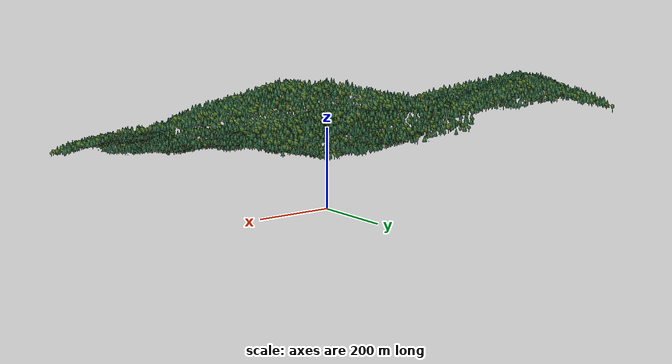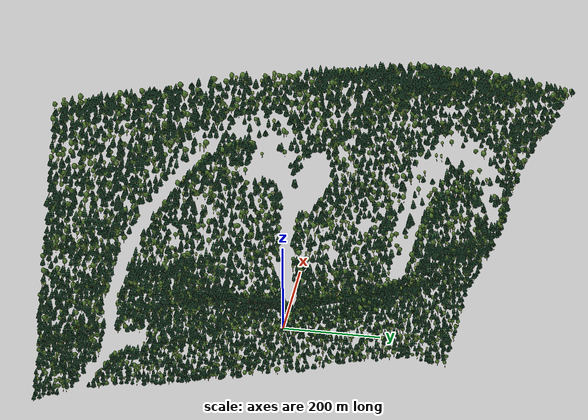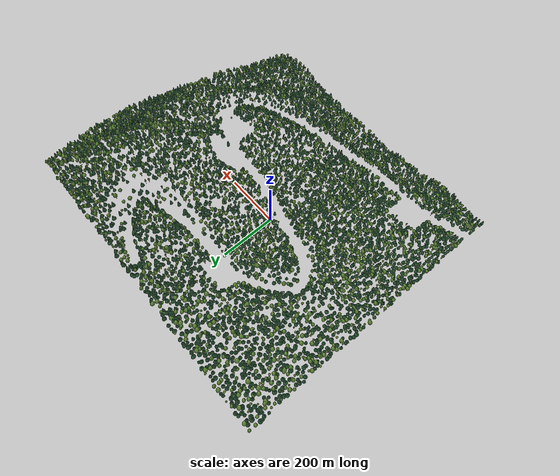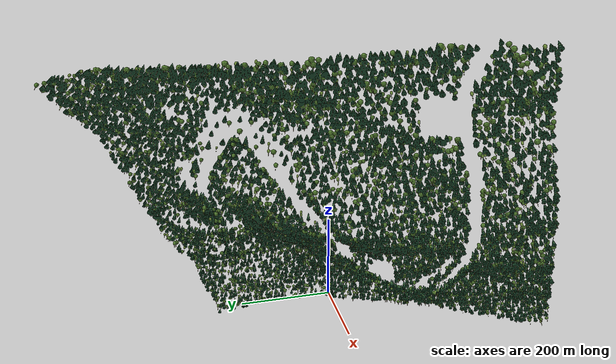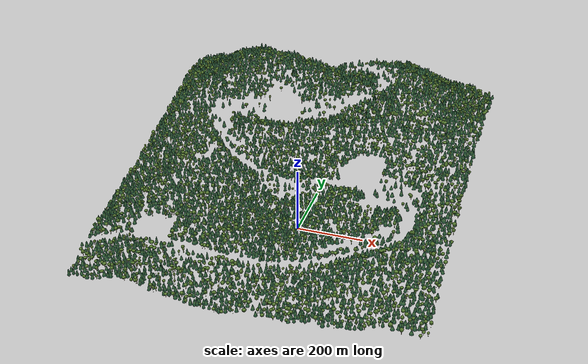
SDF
<?xml version='1.0' encoding='utf-8'?>
<sdf version="1.9">
  <model name="showcase_forest">
    <static>true</static>
    <link name="landscape">
      <visual name="forest_0_0">
        <cast_shadows>true</cast_shadows>
        <geometry>
          <mesh>
            <uri>model://showcase_forest/meshes/forest_0_0.dae</uri>
          </mesh>
        </geometry>
      </visual>
      <visual name="forest_0_1">
        <cast_shadows>true</cast_shadows>
        <geometry>
          <mesh>
            <uri>model://showcase_forest/meshes/forest_0_1.dae</uri>
          </mesh>
        </geometry>
      </visual>
      <visual name="forest_0_2">
        <cast_shadows>true</cast_shadows>
        <geometry>
          <mesh>
            <uri>model://showcase_forest/meshes/forest_0_2.dae</uri>
          </mesh>
        </geometry>
      </visual>
      <visual name="forest_0_3">
        <cast_shadows>true</cast_shadows>
        <geometry>
          <mesh>
            <uri>model://showcase_forest/meshes/forest_0_3.dae</uri>
          </mesh>
        </geometry>
      </visual>
      <visual name="forest_0_4">
        <cast_shadows>true</cast_shadows>
        <geometry>
          <mesh>
            <uri>model://showcase_forest/meshes/forest_0_4.dae</uri>
          </mesh>
        </geometry>
      </visual>
      <visual name="forest_0_5">
        <cast_shadows>true</cast_shadows>
        <geometry>
          <mesh>
            <uri>model://showcase_forest/meshes/forest_0_5.dae</uri>
          </mesh>
        </geometry>
      </visual>
      <visual name="forest_0_6">
        <cast_shadows>true</cast_shadows>
        <geometry>
          <mesh>
            <uri>model://showcase_forest/meshes/forest_0_6.dae</uri>
          </mesh>
        </geometry>
      </visual>
      <visual name="forest_0_7">
        <cast_shadows>true</cast_shadows>
        <geometry>
          <mesh>
            <uri>model://showcase_forest/meshes/forest_0_7.dae</uri>
          </mesh>
        </geometry>
      </visual>
      <visual name="forest_1_0">
        <cast_shadows>true</cast_shadows>
        <geometry>
          <mesh>
            <uri>model://showcase_forest/meshes/forest_1_0.dae</uri>
          </mesh>
        </geometry>
      </visual>
      <visual name="forest_1_1">
        <cast_shadows>true</cast_shadows>
        <geometry>
          <mesh>
            <uri>model://showcase_forest/meshes/forest_1_1.dae</uri>
          </mesh>
        </geometry>
      </visual>
      <visual name="forest_1_2">
        <cast_shadows>true</cast_shadows>
        <geometry>
          <mesh>
            <uri>model://showcase_forest/meshes/forest_1_2.dae</uri>
          </mesh>
        </geometry>
      </visual>
      <visual name="forest_1_3">
        <cast_shadows>true</cast_shadows>
        <geometry>
          <mesh>
            <uri>model://showcase_forest/meshes/forest_1_3.dae</uri>
          </mesh>
        </geometry>
      </visual>
      <visual name="forest_1_4">
        <cast_shadows>true</cast_shadows>
        <geometry>
          <mesh>
            <uri>model://showcase_forest/meshes/forest_1_4.dae</uri>
          </mesh>
        </geometry>
      </visual>
      <visual name="forest_1_5">
        <cast_shadows>true</cast_shadows>
        <geometry>
          <mesh>
            <uri>model://showcase_forest/meshes/forest_1_5.dae</uri>
          </mesh>
        </geometry>
      </visual>
      <visual name="forest_1_6">
        <cast_shadows>true</cast_shadows>
        <geometry>
          <mesh>
            <uri>model://showcase_forest/meshes/forest_1_6.dae</uri>
          </mesh>
        </geometry>
      </visual>
      <visual name="forest_1_7">
        <cast_shadows>true</cast_shadows>
        <geometry>
          <mesh>
            <uri>model://showcase_forest/meshes/forest_1_7.dae</uri>
          </mesh>
        </geometry>
      </visual>
      <visual name="forest_2_0">
        <cast_shadows>true</cast_shadows>
        <geometry>
          <mesh>
            <uri>model://showcase_forest/meshes/forest_2_0.dae</uri>
          </mesh>
        </geometry>
      </visual>
      <visual name="forest_2_1">
        <cast_shadows>true</cast_shadows>
        <geometry>
          <mesh>
            <uri>model://showcase_forest/meshes/forest_2_1.dae</uri>
          </mesh>
        </geometry>
      </visual>
      <visual name="forest_2_2">
        <cast_shadows>true</cast_shadows>
        <geometry>
          <mesh>
            <uri>model://showcase_forest/meshes/forest_2_2.dae</uri>
          </mesh>
        </geometry>
      </visual>
      <visual name="forest_2_3">
        <cast_shadows>true</cast_shadows>
        <geometry>
          <mesh>
            <uri>model://showcase_forest/meshes/forest_2_3.dae</uri>
          </mesh>
        </geometry>
      </visual>
      <visual name="forest_2_4">
        <cast_shadows>true</cast_shadows>
        <geometry>
          <mesh>
            <uri>model://showcase_forest/meshes/forest_2_4.dae</uri>
          </mesh>
        </geometry>
      </visual>
      <visual name="forest_2_5">
        <cast_shadows>true</cast_shadows>
        <geometry>
          <mesh>
            <uri>model://showcase_forest/meshes/forest_2_5.dae</uri>
          </mesh>
        </geometry>
      </visual>
      <visual name="forest_2_6">
        <cast_shadows>true</cast_shadows>
        <geometry>
          <mesh>
            <uri>model://showcase_forest/meshes/forest_2_6.dae</uri>
          </mesh>
        </geometry>
      </visual>
      <visual name="forest_2_7">
        <cast_shadows>true</cast_shadows>
        <geometry>
          <mesh>
            <uri>model://showcase_forest/meshes/forest_2_7.dae</uri>
          </mesh>
        </geometry>
      </visual>
      <visual name="forest_3_0">
        <cast_shadows>true</cast_shadows>
        <geometry>
          <mesh>
            <uri>model://showcase_forest/meshes/forest_3_0.dae</uri>
          </mesh>
        </geometry>
      </visual>
      <visual name="forest_3_1">
        <cast_shadows>true</cast_shadows>
        <geometry>
          <mesh>
            <uri>model://showcase_forest/meshes/forest_3_1.dae</uri>
          </mesh>
        </geometry>
      </visual>
      <visual name="forest_3_2">
        <cast_shadows>true</cast_shadows>
        <geometry>
          <mesh>
            <uri>model://showcase_forest/meshes/forest_3_2.dae</uri>
          </mesh>
        </geometry>
      </visual>
      <visual name="forest_3_3">
        <cast_shadows>true</cast_shadows>
        <geometry>
          <mesh>
            <uri>model://showcase_forest/meshes/forest_3_3.dae</uri>
          </mesh>
        </geometry>
      </visual>
      <visual name="forest_3_4">
        <cast_shadows>true</cast_shadows>
        <geometry>
          <mesh>
            <uri>model://showcase_forest/meshes/forest_3_4.dae</uri>
          </mesh>
        </geometry>
      </visual>
      <visual name="forest_3_5">
        <cast_shadows>true</cast_shadows>
        <geometry>
          <mesh>
            <uri>model://showcase_forest/meshes/forest_3_5.dae</uri>
          </mesh>
        </geometry>
      </visual>
      <visual name="forest_3_6">
        <cast_shadows>true</cast_shadows>
        <geometry>
          <mesh>
            <uri>model://showcase_forest/meshes/forest_3_6.dae</uri>
          </mesh>
        </geometry>
      </visual>
      <visual name="forest_3_7">
        <cast_shadows>true</cast_shadows>
        <geometry>
          <mesh>
            <uri>model://showcase_forest/meshes/forest_3_7.dae</uri>
          </mesh>
        </geometry>
      </visual>
      <visual name="forest_4_0">
        <cast_shadows>true</cast_shadows>
        <geometry>
          <mesh>
            <uri>model://showcase_forest/meshes/forest_4_0.dae</uri>
          </mesh>
        </geometry>
      </visual>
      <visual name="forest_4_1">
        <cast_shadows>true</cast_shadows>
        <geometry>
          <mesh>
            <uri>model://showcase_forest/meshes/forest_4_1.dae</uri>
          </mesh>
        </geometry>
      </visual>
      <visual name="forest_4_2">
        <cast_shadows>true</cast_shadows>
        <geometry>
          <mesh>
            <uri>model://showcase_forest/meshes/forest_4_2.dae</uri>
          </mesh>
        </geometry>
      </visual>
      <visual name="forest_4_3">
        <cast_shadows>true</cast_shadows>
        <geometry>
          <mesh>
            <uri>model://showcase_forest/meshes/forest_4_3.dae</uri>
          </mesh>
        </geometry>
      </visual>
      <visual name="forest_4_4">
        <cast_shadows>true</cast_shadows>
        <geometry>
          <mesh>
            <uri>model://showcase_forest/meshes/forest_4_4.dae</uri>
          </mesh>
        </geometry>
      </visual>
      <visual name="forest_4_5">
        <cast_shadows>true</cast_shadows>
        <geometry>
          <mesh>
            <uri>model://showcase_forest/meshes/forest_4_5.dae</uri>
          </mesh>
        </geometry>
      </visual>
      <visual name="forest_4_6">
        <cast_shadows>true</cast_shadows>
        <geometry>
          <mesh>
            <uri>model://showcase_forest/meshes/forest_4_6.dae</uri>
          </mesh>
        </geometry>
      </visual>
      <visual name="forest_4_7">
        <cast_shadows>true</cast_shadows>
        <geometry>
          <mesh>
            <uri>model://showcase_forest/meshes/forest_4_7.dae</uri>
          </mesh>
        </geometry>
      </visual>
      <visual name="forest_5_0">
        <cast_shadows>true</cast_shadows>
        <geometry>
          <mesh>
            <uri>model://showcase_forest/meshes/forest_5_0.dae</uri>
          </mesh>
        </geometry>
      </visual>
      <visual name="forest_5_1">
        <cast_shadows>true</cast_shadows>
        <geometry>
          <mesh>
            <uri>model://showcase_forest/meshes/forest_5_1.dae</uri>
          </mesh>
        </geometry>
      </visual>
      <visual name="forest_5_2">
        <cast_shadows>true</cast_shadows>
        <geometry>
          <mesh>
            <uri>model://showcase_forest/meshes/forest_5_2.dae</uri>
          </mesh>
        </geometry>
      </visual>
      <visual name="forest_5_3">
        <cast_shadows>true</cast_shadows>
        <geometry>
          <mesh>
            <uri>model://showcase_forest/meshes/forest_5_3.dae</uri>
          </mesh>
        </geometry>
      </visual>
      <visual name="forest_5_4">
        <cast_shadows>true</cast_shadows>
        <geometry>
          <mesh>
            <uri>model://showcase_forest/meshes/forest_5_4.dae</uri>
          </mesh>
        </geometry>
      </visual>
      <visual name="forest_5_5">
        <cast_shadows>true</cast_shadows>
        <geometry>
          <mesh>
            <uri>model://showcase_forest/meshes/forest_5_5.dae</uri>
          </mesh>
        </geometry>
      </visual>
      <visual name="forest_5_6">
        <cast_shadows>true</cast_shadows>
        <geometry>
          <mesh>
            <uri>model://showcase_forest/meshes/forest_5_6.dae</uri>
          </mesh>
        </geometry>
      </visual>
      <visual name="forest_5_7">
        <cast_shadows>true</cast_shadows>
        <geometry>
          <mesh>
            <uri>model://showcase_forest/meshes/forest_5_7.dae</uri>
          </mesh>
        </geometry>
      </visual>
      <visual name="forest_6_0">
        <cast_shadows>true</cast_shadows>
        <geometry>
          <mesh>
            <uri>model://showcase_forest/meshes/forest_6_0.dae</uri>
          </mesh>
        </geometry>
      </visual>
      <visual name="forest_6_1">
        <cast_shadows>true</cast_shadows>
        <geometry>
          <mesh>
            <uri>model://showcase_forest/meshes/forest_6_1.dae</uri>
          </mesh>
        </geometry>
      </visual>
      <visual name="forest_6_2">
        <cast_shadows>true</cast_shadows>
        <geometry>
          <mesh>
            <uri>model://showcase_forest/meshes/forest_6_2.dae</uri>
          </mesh>
        </geometry>
      </visual>
      <visual name="forest_6_3">
        <cast_shadows>true</cast_shadows>
        <geometry>
          <mesh>
            <uri>model://showcase_forest/meshes/forest_6_3.dae</uri>
          </mesh>
        </geometry>
      </visual>
      <visual name="forest_6_4">
        <cast_shadows>true</cast_shadows>
        <geometry>
          <mesh>
            <uri>model://showcase_forest/meshes/forest_6_4.dae</uri>
          </mesh>
        </geometry>
      </visual>
      <visual name="forest_6_5">
        <cast_shadows>true</cast_shadows>
        <geometry>
          <mesh>
            <uri>model://showcase_forest/meshes/forest_6_5.dae</uri>
          </mesh>
        </geometry>
      </visual>
      <visual name="forest_6_6">
        <cast_shadows>true</cast_shadows>
        <geometry>
          <mesh>
            <uri>model://showcase_forest/meshes/forest_6_6.dae</uri>
          </mesh>
        </geometry>
      </visual>
      <visual name="forest_6_7">
        <cast_shadows>true</cast_shadows>
        <geometry>
          <mesh>
            <uri>model://showcase_forest/meshes/forest_6_7.dae</uri>
          </mesh>
        </geometry>
      </visual>
      <visual name="forest_7_0">
        <cast_shadows>true</cast_shadows>
        <geometry>
          <mesh>
            <uri>model://showcase_forest/meshes/forest_7_0.dae</uri>
          </mesh>
        </geometry>
      </visual>
      <visual name="forest_7_1">
        <cast_shadows>true</cast_shadows>
        <geometry>
          <mesh>
            <uri>model://showcase_forest/meshes/forest_7_1.dae</uri>
          </mesh>
        </geometry>
      </visual>
      <visual name="forest_7_2">
        <cast_shadows>true</cast_shadows>
        <geometry>
          <mesh>
            <uri>model://showcase_forest/meshes/forest_7_2.dae</uri>
          </mesh>
        </geometry>
      </visual>
      <visual name="forest_7_3">
        <cast_shadows>true</cast_shadows>
        <geometry>
          <mesh>
            <uri>model://showcase_forest/meshes/forest_7_3.dae</uri>
          </mesh>
        </geometry>
      </visual>
      <visual name="forest_7_4">
        <cast_shadows>true</cast_shadows>
        <geometry>
          <mesh>
            <uri>model://showcase_forest/meshes/forest_7_4.dae</uri>
          </mesh>
        </geometry>
      </visual>
      <visual name="forest_7_5">
        <cast_shadows>true</cast_shadows>
        <geometry>
          <mesh>
            <uri>model://showcase_forest/meshes/forest_7_5.dae</uri>
          </mesh>
        </geometry>
      </visual>
      <visual name="forest_7_6">
        <cast_shadows>true</cast_shadows>
        <geometry>
          <mesh>
            <uri>model://showcase_forest/meshes/forest_7_6.dae</uri>
          </mesh>
        </geometry>
      </visual>
      <visual name="forest_7_7">
        <cast_shadows>true</cast_shadows>
        <geometry>
          <mesh>
            <uri>model://showcase_forest/meshes/forest_7_7.dae</uri>
          </mesh>
        </geometry>
      </visual>
    </link>
  </model>
</sdf>
